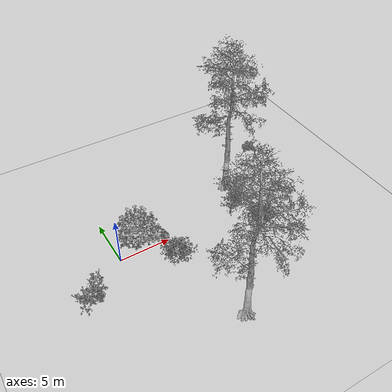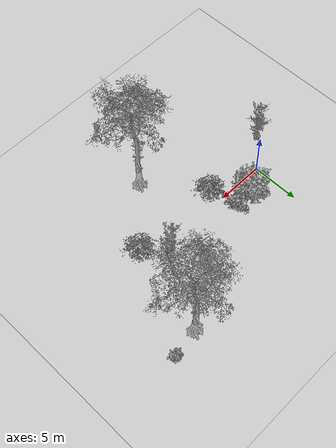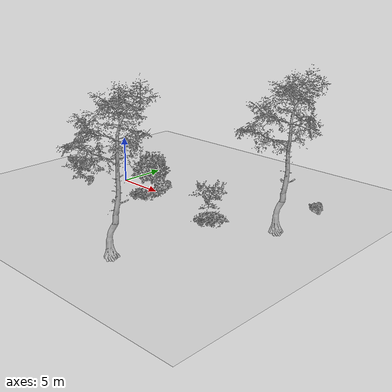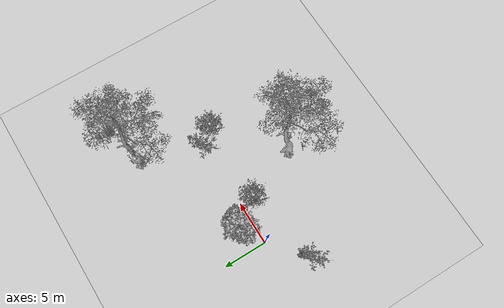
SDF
<sdf version="1.7">
 <world name="default">
  <light name="sun" type="directional">
   <pose>0 0 10 0 -0 0</pose>
   <diffuse>0.8 0.8 0.8 1</diffuse>
   <specular>0.2 0.2 0.2 1</specular>
   <attenuation>
    <range>1000</range>
    <constant>0.9</constant>
    <linear>0.01</linear>
    <quadratic>0.001</quadratic>
   </attenuation>
   <direction>-0.5 0.1 -0.9</direction>
   <spot><inner_angle>0</inner_angle><outer_angle>0</outer_angle><falloff>0</falloff></spot>
  </light>
  <model name="ground_plane">
   <static>1</static>
   <link name="link">
    <collision name="collision">
     <geometry><plane><normal>0 0 1</normal><size>100 100</size></plane></geometry>
     <surface>
      <contact><collide_bitmask>65535</collide_bitmask></contact>
      <friction><ode><mu>100</mu><mu2>50</mu2></ode></friction>
     </surface>
    </collision>
    <visual name="visual">
     <cast_shadows>0</cast_shadows>
     <geometry><plane><normal>0 0 1</normal><size>100 100</size></plane></geometry>
     <material>
      <script><uri>file://media/materials/scripts/gazebo.material</uri><name>Gazebo/Grey</name></script>
     </material>
    </visual>
   </link>
  </model>
  <gravity>0 0 -9.8</gravity>
  <magnetic_field>6e-06 2.3e-05 -4.2e-05</magnetic_field>
  <atmosphere type="adiabatic"/>
  <physics type="ode">
   <max_step_size>0.001</max_step_size>
   <real_time_factor>1</real_time_factor>
   <real_time_update_rate>1000</real_time_update_rate>
  </physics>
  <scene><ambient>0.4 0.4 0.4 1</ambient><background>0.7 0.7 0.7 1</background><shadows>1</shadows></scene>
  <spherical_coordinates>
   <surface_model>EARTH_WGS84</surface_model>
   <latitude_deg>0</latitude_deg>
   <longitude_deg>0</longitude_deg>
   <elevation>0</elevation>
   <heading_deg>0</heading_deg>
  </spherical_coordinates>
  <model name="tree_1">
   <static>1</static>
   <link name="link">
    <visual name="visual"><geometry><mesh><uri>model://tree_1/meshes/tree_1.stl</uri></mesh></geometry></visual>
    <collision name="collision"><geometry><box><size>0.3 0.2 0.1</size></box></geometry></collision>
    <inertial>
     <mass>1</mass>
     <inertia><ixx>0.01</ixx><iyy>0.01</iyy><izz>0.01</izz><ixy>0</ixy><ixz>0</ixz><iyz>0</iyz></inertia>
    </inertial>
   </link>
   <pose>-3.15454 -3.23038 0 0 -0 0</pose>
  </model>
  <model name="tree_2">
   <static>1</static>
   <link name="link">
    <visual name="visual"><geometry><mesh><uri>model://tree_2/meshes/tree_2.stl</uri></mesh></geometry></visual>
    <collision name="collision"><geometry><box><size>0.3 0.2 0.1</size></box></geometry></collision>
    <inertial>
     <mass>1</mass>
     <inertia><ixx>0.01</ixx><iyy>0.01</iyy><izz>0.01</izz><ixy>0</ixy><ixz>0</ixz><iyz>0</iyz></inertia>
    </inertial>
   </link>
   <pose>-7.95037 -7.37092 0 0 -0 0</pose>
  </model>
  <model name="bush_1">
   <static>1</static>
   <link name="link">
    <visual name="visual"><geometry><mesh><uri>model://bush_1/meshes/bush_1.stl</uri></mesh></geometry></visual>
    <collision name="collision"><geometry><box><size>0.3 0.2 0.1</size></box></geometry></collision>
    <inertial>
     <mass>1</mass>
     <inertia><ixx>0.01</ixx><iyy>0.01</iyy><izz>0.01</izz><ixy>0</ixy><ixz>0</ixz><iyz>0</iyz></inertia>
    </inertial>
   </link>
   <pose>5.0076 -0.138126 0 0 -0 0</pose>
  </model>
  <model name="bush_2">
   <static>1</static>
   <link name="link">
    <visual name="visual"><geometry><mesh><uri>model://bush_2/meshes/bush_2.stl</uri></mesh></geometry></visual>
    <collision name="collision"><geometry><box><size>0.3 0.2 0.1</size></box></geometry></collision>
    <inertial>
     <mass>1</mass>
     <inertia><ixx>0.01</ixx><iyy>0.01</iyy><izz>0.01</izz><ixy>0</ixy><ixz>0</ixz><iyz>0</iyz></inertia>
    </inertial>
   </link>
   <pose>2.97966 -0.873269 0 0 -0 0</pose>
  </model>
  <model name="bush_3">
   <static>1</static>
   <link name="link">
    <visual name="visual"><geometry><mesh><uri>model://bush_3/meshes/bush_3.stl</uri></mesh></geometry></visual>
    <collision name="collision"><geometry><box><size>0.3 0.2 0.1</size></box></geometry></collision>
    <inertial>
     <mass>1</mass>
     <inertia><ixx>0.01</ixx><iyy>0.01</iyy><izz>0.01</izz><ixy>0</ixy><ixz>0</ixz><iyz>0</iyz></inertia>
    </inertial>
   </link>
   <pose>-8.81115 1.47913 0 0 -0 0</pose>
  </model>
  <model name="tree_3">
   <static>1</static>
   <link name="link">
    <visual name="visual"><geometry><mesh><uri>model://tree_3/meshes/tree_3.stl</uri></mesh></geometry></visual>
    <collision name="collision"><geometry><box><size>0.3 0.2 0.1</size></box></geometry></collision>
    <inertial>
     <mass>1</mass>
     <inertia><ixx>0.01</ixx><iyy>0.01</iyy><izz>0.01</izz><ixy>0</ixy><ixz>0</ixz><iyz>0</iyz></inertia>
    </inertial>
   </link>
   <pose>19.9202 7.442 0 0 -0 0</pose>
  </model>
  <model name="tree_4">
   <static>1</static>
   <link name="link">
    <visual name="visual"><geometry><mesh><uri>model://tree_4/meshes/tree_4.stl</uri></mesh></geometry></visual>
    <collision name="collision"><geometry><box><size>0.3 0.2 0.1</size></box></geometry></collision>
    <inertial>
     <mass>1</mass>
     <inertia><ixx>0.01</ixx><iyy>0.01</iyy><izz>0.01</izz><ixy>0</ixy><ixz>0</ixz><iyz>0</iyz></inertia>
    </inertial>
   </link>
   <pose>4.48298 -1.65713 0 0 -0 0</pose>
  </model>
  <model name="bush_1_0">
   <static>1</static>
   <link name="link">
    <visual name="visual"><geometry><mesh><uri>model://bush_1/meshes/bush_1.stl</uri></mesh></geometry></visual>
    <collision name="collision"><geometry><box><size>0.3 0.2 0.1</size></box></geometry></collision>
    <inertial>
     <mass>1</mass>
     <inertia><ixx>0.01</ixx><iyy>0.01</iyy><izz>0.01</izz><ixy>0</ixy><ixz>0</ixz><iyz>0</iyz></inertia>
    </inertial>
   </link>
   <pose>21.581 3.38357 0 0 -0 0</pose>
  </model>
  <model name="tree_2_0">
   <static>1</static>
   <link name="link">
    <visual name="visual"><geometry><mesh><uri>model://tree_2/meshes/tree_2.stl</uri></mesh></geometry></visual>
    <collision name="collision"><geometry><box><size>0.3 0.2 0.1</size></box></geometry></collision>
    <inertial>
     <mass>1</mass>
     <inertia><ixx>0.01</ixx><iyy>0.01</iyy><izz>0.01</izz><ixy>0</ixy><ixz>0</ixz><iyz>0</iyz></inertia>
    </inertial>
   </link>
   <pose>-0.04915 8.24149 0 0 -0 0</pose>
  </model>
  <model name="bush_2_0">
   <static>1</static>
   <link name="link">
    <visual name="visual"><geometry><mesh><uri>model://bush_2/meshes/bush_2.stl</uri></mesh></geometry></visual>
    <collision name="collision"><geometry><box><size>0.3 0.2 0.1</size></box></geometry></collision>
    <inertial>
     <mass>1</mass>
     <inertia><ixx>0.01</ixx><iyy>0.01</iyy><izz>0.01</izz><ixy>0</ixy><ixz>0</ixz><iyz>0</iyz></inertia>
    </inertial>
   </link>
   <pose>12.5399 -1.06079 0 0 -0 0</pose>
  </model>
 </world>
</sdf>
